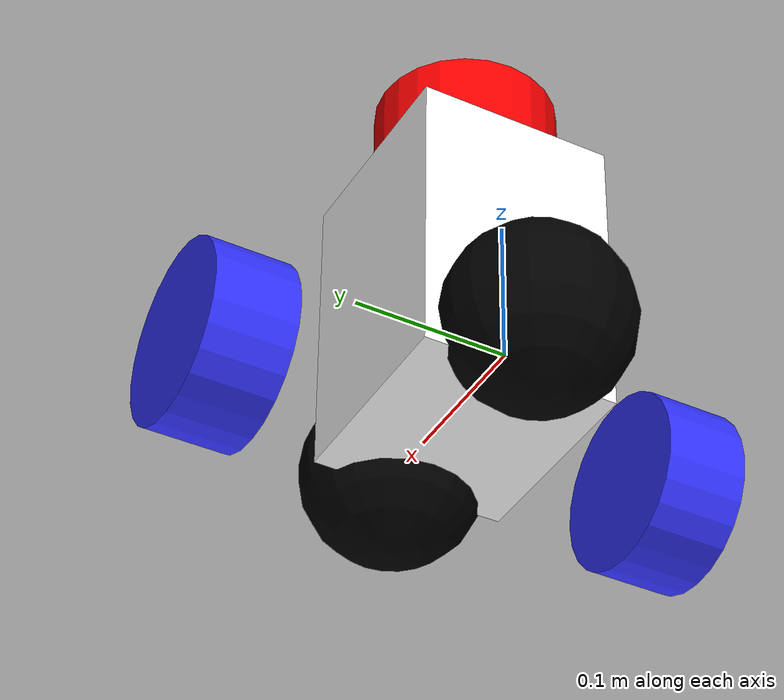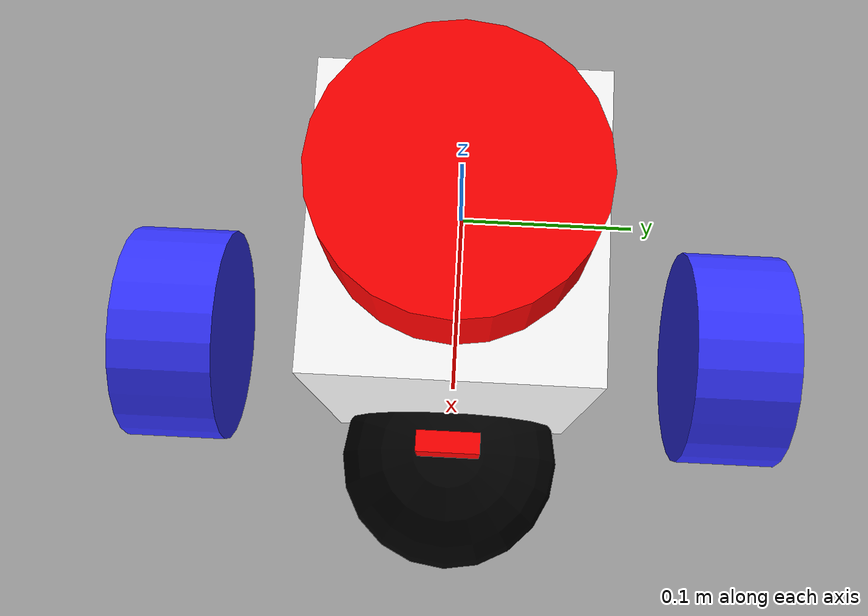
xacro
<?xml version="1.0"?>
<robot xmlns:xacro="http://www.ros.org/wiki/xacro"  name="robot">

    <xacro:arg name="use_ros2_control" default="true"/>
    <xacro:arg name="sim_mode" default="false"/>

    <xacro:include filename="robot_core.xacro" />

    <xacro:if value="$(arg use_ros2_control)">
        <xacro:include filename="ros2_control.xacro" />
    </xacro:if>

    <xacro:unless value="$(arg use_ros2_control)">
        <xacro:include filename="gazebo_control.xacro" />
    </xacro:unless>

    <xacro:include filename="lidar.xacro" />
    <xacro:include filename="camera.xacro" />

</robot>

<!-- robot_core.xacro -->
<robot xmlns:xacro="http://www.ros.org/wiki/xacro"  >

    <xacro:include filename="inertial_macros.xacro"/>

    <material name="white">
        <color rgba="1 1 1 1" />
    </material>

    <material name="orange">
        <color rgba="1 0.3 0.1 1" />
    </material>

    <material name="blue">
        <color rgba="0.2 0.2 1 1" />
    </material>

    <material name="black">
        <color rgba="0 0 0 1" />
    </material>

    <material name="red">
        <color rgba="1 0 0 1" />
    </material>

     <!-- BASE LINK -->
    <link name="base_link">

    </link>

    <!--BASE FOOT-PRINT -->
    <joint name="base_footprint_joint" type="fixed">
        <parent link="base_link"/>
        <child link="base_footprint"/>
        <origin xyz="0 0 0" rpy="0 0 0"/>
    </joint>

    <link name="base_footprint">
    </link>

     <!-- cHASIIS LINK -->
    <joint name="chassis_joint" type="fixed">
        <parent link="base_link"/>
        <child link="chassis"/>
        <origin xyz="-0.1 0 0"/>

    </joint>

    <link name="chassis">
        <visual>
            <origin xyz="0.15 0 0.075"/>
            <geometry>
                <box size="0.14 0.13 0.2"/>
            </geometry>
            <material name="white"/>
        </visual>

        <collision>
            <origin xyz="0.15 0 0.075"/>
            <geometry>
                <box size="0.14 0.13 0.2"/>
            </geometry>
        </collision>

        <xacro:inertial_box mass="0.5" x="0.14"  y="0.13" z="0.2">
                <origin xyz="0.15 0 0.075" rpy="0 0 0"/>

        </xacro:inertial_box>

    </link>

    <gazebo reference="chassis">
        <material>Gazebo/White</material>
    </gazebo>

    <!-- LEFT WHEEL LINK -->

    <joint name="left_wheel_joint" type="continuous">
        <parent link="base_link"/>
        <child link="left_wheel"/>
        <origin xyz="0.075 0.155 0" rpy="-${pi/2} 0 0"/>
        <axis xyz="0 0 1"/>

    </joint>

    <link name="left_wheel">
        <visual>
            <geometry>
                <cylinder radius="0.06" length=".055"/>
            </geometry>
            <material name="blue"/>
        </visual>

        <collision>
            <geometry>
                <sphere radius="0.06"/>
            </geometry>
        </collision>

        <xacro:inertial_cylinder mass="0.1" length="0.055" radius="0.06">
            <origin xyz="0 0 0" rpy="0 0 0"/>
        </xacro:inertial_cylinder>
    </link>

    <gazebo reference="left_wheel">
        <material>Gazebo/Blue</material>
    </gazebo>

    <!-- RIGHT WHEEL LINK -->

    <joint name="right_wheel_joint" type="continuous">
        <parent link="base_link"/>
        <child link="right_wheel"/>
        <origin xyz="0.075 -0.155 0" rpy="${pi/2} 0 0"/>
        <axis xyz="0 0 -1"/>

    </joint>

    <link name="right_wheel">
        <visual>
            <geometry>
                <cylinder radius="0.06" length=".055"/>
            </geometry>
            <material name="blue"/>
        </visual>

        <collision>
            <geometry>
                <sphere radius="0.06"/>
            </geometry>
        </collision>

        <xacro:inertial_cylinder mass="0.1" length="0.055" radius="0.06">
            <origin xyz="0 0 0" rpy="0 0 0"/>
        </xacro:inertial_cylinder>
    </link>

    <gazebo reference="right_wheel">
        <material>Gazebo/Blue</material>
    </gazebo>

    <!-- FRONT CASTER WHEEL -->
    <joint name="caster_wheel_front_joint" type="fixed">
        <parent link="chassis"/>
        <child link="caster_wheel_front"/>
        <origin xyz="0.24 0 0"/>
    </joint>

    <link name="caster_wheel_front">
        <visual>
            <geometry>
                <sphere radius="0.06"/>
            </geometry>
            <material name="black"/>
        </visual>
        <collision>
            <geometry>
                <sphere radius="0.06"/>
            </geometry>
        </collision>
        <xacro:inertial_sphere mass="0.1" radius="0.06">
            <origin xyz="0 0 0" rpy="0 0 0"/>
        </xacro:inertial_sphere>
    </link>

    <gazebo reference="caster_wheel_front">
        <material>Gazebo/Black</material>
        <mu1 value="0.001"/>
        <mu2 value="0.001"/>
    </gazebo>

    <!-- REAR CASTER WHEEL -->
    <joint name="caster_wheel_rear_joint" type="fixed">
        <parent link="chassis"/>
        <child link="caster_wheel_rear"/>
        <origin xyz="0.06 0 0"/>
    </joint>

    <link name="caster_wheel_rear">
        <visual>
            <geometry>
                <sphere radius="0.06"/>
            </geometry>
            <material name="black"/>
        </visual>
        <collision>
            <geometry>
                <sphere radius="0.06"/>
            </geometry>
        </collision>
        <xacro:inertial_sphere mass="0.1" radius="0.06">
            <origin xyz="0 0 0" rpy="0 0 0"/>
        </xacro:inertial_sphere>
    </link>

    <gazebo reference="caster_wheel_rear">
        <material>Gazebo/Black</material>
        <mu1 value="0.001"/>
        <mu2 value="0.001"/>
    </gazebo>

</robot>

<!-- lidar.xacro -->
<robot xmlns:xacro="http://www.ros.org/wiki/xacro"  >

    <joint name="laser_joint" type="fixed">
        <parent link="chassis"/>
        <child link="laser_frame"/>
        <origin xyz="0.145 0 0.2" rpy="0 0 0"/>

    </joint>

    <link name="laser_frame">
        <visual>
            <geometry>
                <cylinder radius="0.06" length=".055"/>
            </geometry>
            <material name="red"/>
        </visual>

        <collision>
            <geometry>
                <cylinder radius="0.06" length=".055"/>
            </geometry>
        </collision>

        <xacro:inertial_cylinder mass="0.1" length="0.055" radius="0.06">
            <origin xyz="0 0 0" rpy="0 0 0"/>
        </xacro:inertial_cylinder>
    </link>

    <gazebo reference="laser_frame">
        <material>Gazebo/Red</material>
        <sensor name="laser" type="ray">
            <pose> 0 0 0 0 0 0 </pose>
            <visualize>false</visualize>
            <update_rate>10</update_rate>
            <ray>
                <scan>
                    <horizontal>
                        <samples>360</samples>
                        <resulation>1</resulation>
                        <min_angle>-3.14</min_angle>
                        <max_angle>3.14</max_angle>
                    </horizontal>
                </scan>
                <range>
                    <min>0.3</min>
                    <max>12</max>
                    <resulation>0.01</resulation>
                </range>
            </ray>
            <plugin name="laser_controller" filename="libgazebo_ros_ray_sensor.so">
                <ros>
                    <argument>~/out:=scan</argument>
                </ros>
                <output_type>sensor_msgs/LaserScan</output_type>
                <frame_name>laser_frame</frame_name>
            </plugin>
        </sensor>
    </gazebo>

</robot>

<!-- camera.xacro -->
<robot xmlns:xacro="http://www.ros.org/wiki/xacro"  >

    <joint name="camera_joint" type="fixed">
        <parent link="chassis"/>
        <child link="camera_link"/>
        <origin xyz="0.24 0 0.1" rpy="0 0 0"/>

    </joint>

    <link name="camera_link">
        <visual>
            <geometry>
                <box size=".01 .03 .03"/>
            </geometry>
            <material name="red"/>
        </visual>
    </link>

    <joint name="camera_optical_joint" type="fixed">
        <parent link="camera_link"/>
        <child link="camera_link_optical"/>
        <origin xyz="0 0 0" rpy="${-pi/2} 0 ${-pi/2}"/>

    </joint>

    <link name="camera_link_optical"></link>

    <gazebo reference="camera_link">
        <material>Gazebo/Red</material>
        <sensor name="camera" type="camera">
            <pose> 0 0 0 0 0 0 </pose>
            <visualize>true</visualize>
            <update_rate>10</update_rate>
            <camera>
                <horizontal_fov>1.1345</horizontal_fov>
                <image>
                    <format>R8G8B8</format>
                    <width>640</width>
                    <height>480</height>
                </image>
                <clip>
                    <near>0.05</near>
                    <far>8.0</far>
                </clip>
            </camera>
            <plugin name="camera_controller" filename="libgazebo_ros_camera.so">
                <frame_name>camera_link_optical</frame_name>
            </plugin>
        </sensor>
    </gazebo>

</robot>
